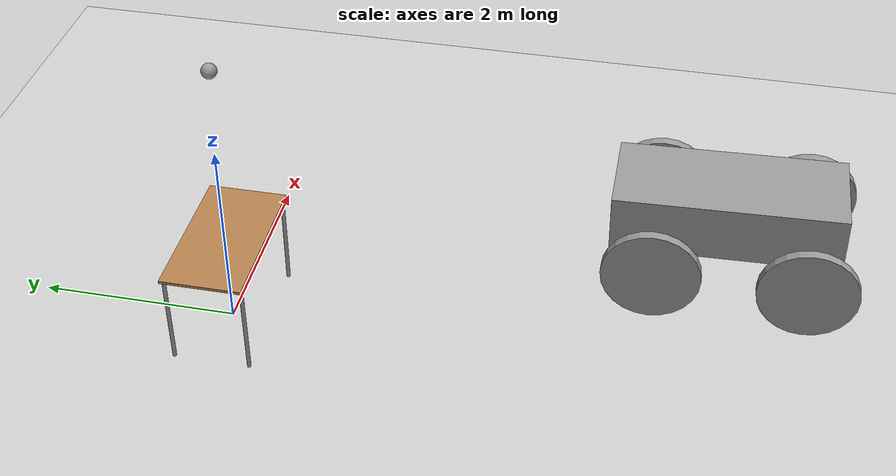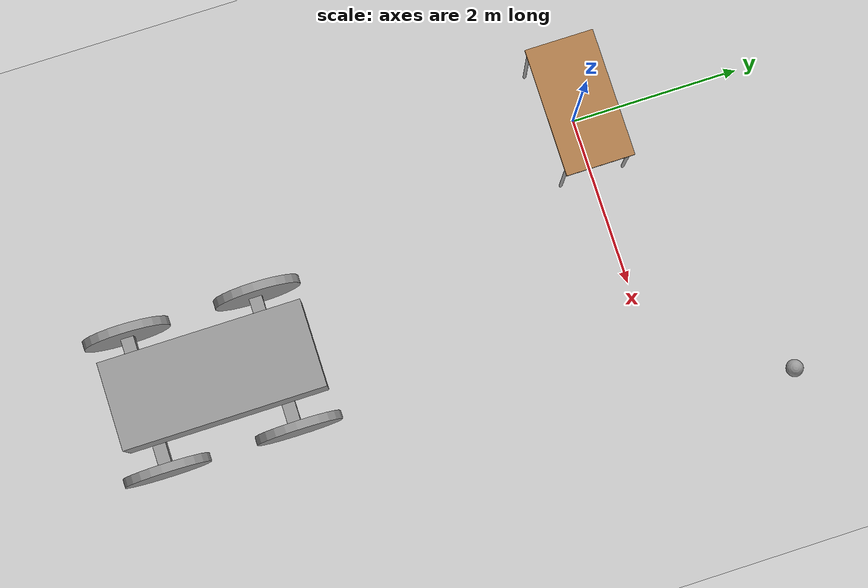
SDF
<sdf version="1.6">
 <world name="default">
  <model name="ground_plane">
   <static>1</static>
   <link name="link">
    <collision name="collision">
     <geometry><plane><normal>0 0 1</normal><size>100 100</size></plane></geometry>
     <surface>
      <contact><collide_bitmask>65535</collide_bitmask></contact>
      <friction><ode><mu>100</mu><mu2>50</mu2></ode></friction>
     </surface>
    </collision>
    <visual name="visual">
     <cast_shadows>0</cast_shadows>
     <geometry><plane><normal>0 0 1</normal><size>100 100</size></plane></geometry>
     <material>
      <script><uri>file://media/materials/scripts/gazebo.material</uri><name>Gazebo/Grey</name></script>
     </material>
    </visual>
   </link>
  </model>
  <model name="ground_plane">
   <static>1</static>
   <link name="link">
    <collision name="collision">
     <geometry><plane><normal>0 0 1</normal><size>100 100</size></plane></geometry>
     <surface>
      <contact><collide_bitmask>65535</collide_bitmask></contact>
      <friction><ode><mu>100</mu><mu2>50</mu2></ode></friction>
     </surface>
    </collision>
    <visual name="visual">
     <cast_shadows>0</cast_shadows>
     <geometry><plane><normal>0 0 1</normal><size>100 100</size></plane></geometry>
     <material>
      <script><uri>file://media/materials/scripts/gazebo.material</uri><name>Gazebo/Grey</name></script>
     </material>
    </visual>
   </link>
  </model>
  <model name="table">
   <static>1</static>
   <link name="link">
    <collision name="surface">
     <pose>0 0 1 0 -0 0</pose>
     <geometry><box><size>1.5 0.8 0.03</size></box></geometry>
     <surface><friction><ode><mu>0.6</mu><mu2>0.6</mu2></ode></friction></surface>
    </collision>
    <visual name="visual1">
     <pose>0 0 1 0 -0 0</pose>
     <geometry><box><size>1.5 0.8 0.03</size></box></geometry>
     <material>
      <script><uri>file://media/materials/scripts/gazebo.material</uri><name>Gazebo/Wood</name></script>
     </material>
    </visual>
    <collision name="front_left_leg">
     <pose>0.68 0.38 0.5 0 -0 0</pose>
     <geometry><cylinder><radius>0.02</radius><length>1</length></cylinder></geometry>
    </collision>
    <visual name="front_left_leg">
     <pose>0.68 0.38 0.5 0 -0 0</pose>
     <geometry><cylinder><radius>0.02</radius><length>1</length></cylinder></geometry>
     <material>
      <script><uri>file://media/materials/scripts/gazebo.material</uri><name>Gazebo/Grey</name></script>
     </material>
    </visual>
    <collision name="front_right_leg">
     <pose>0.68 -0.38 0.5 0 -0 0</pose>
     <geometry><cylinder><radius>0.02</radius><length>1</length></cylinder></geometry>
    </collision>
    <visual name="front_right_leg">
     <pose>0.68 -0.38 0.5 0 -0 0</pose>
     <geometry><cylinder><radius>0.02</radius><length>1</length></cylinder></geometry>
     <material>
      <script><uri>file://media/materials/scripts/gazebo.material</uri><name>Gazebo/Grey</name></script>
     </material>
    </visual>
    <collision name="back_right_leg">
     <pose>-0.68 -0.38 0.5 0 -0 0</pose>
     <geometry><cylinder><radius>0.02</radius><length>1</length></cylinder></geometry>
    </collision>
    <visual name="back_right_leg">
     <pose>-0.68 -0.38 0.5 0 -0 0</pose>
     <geometry><cylinder><radius>0.02</radius><length>1</length></cylinder></geometry>
     <material>
      <script><uri>file://media/materials/scripts/gazebo.material</uri><name>Gazebo/Grey</name></script>
     </material>
    </visual>
    <collision name="back_left_leg">
     <pose>-0.68 0.38 0.5 0 -0 0</pose>
     <geometry><cylinder><radius>0.02</radius><length>1</length></cylinder></geometry>
    </collision>
    <visual name="back_left_leg">
     <pose>-0.68 0.38 0.5 0 -0 0</pose>
     <geometry><cylinder><radius>0.02</radius><length>1</length></cylinder></geometry>
     <material>
      <script><uri>file://media/materials/scripts/gazebo.material</uri><name>Gazebo/Grey</name></script>
     </material>
    </visual>
   </link>
  </model>
  <model name="model_clone">
   <link name="link_0_clone">
    <inertial>
     <mass>1</mass>
     <inertia><ixx>0.145833</ixx><ixy>0</ixy><ixz>0</ixz><iyy>0.145833</iyy><iyz>0</iyz><izz>0.125</izz></inertia>
    </inertial>
    <pose>0.800049 0.773824 -0.030357 0 -0 0</pose>
    <visual name="visual">
     <pose>0 0 0 0 1.5707 0</pose>
     <geometry><cylinder><radius>0.5</radius><length>0.1</length></cylinder></geometry>
     <material>
      <lighting>1</lighting>
      <script><uri>file://media/materials/scripts/gazebo.material</uri><name>Gazebo/Grey</name></script>
      <shader type="vertex"><normal_map>__default__</normal_map></shader>
      <ambient>0.3 0.3 0.3 1</ambient>
      <diffuse>0.7 0.7 0.7 1</diffuse>
      <specular>0.01 0.01 0.01 1</specular>
      <emissive>0 0 0 1</emissive>
     </material>
    </visual>
    <collision name="collision">
     <pose>0 0 0 0 1.5707 0</pose>
     <geometry><cylinder><radius>0.5</radius><length>0.1</length></cylinder></geometry>
     <surface>
      <friction>
       <ode><mu>1</mu><mu2>1</mu2><fdir1>0 0 0</fdir1><slip1>0</slip1><slip2>0</slip2></ode>
       <torsional>
        <coefficient>1</coefficient>
        <patch_radius>0</patch_radius>
        <surface_radius>0</surface_radius>
        <use_patch_radius>1</use_patch_radius>
        <ode><slip>0</slip></ode>
       </torsional>
      </friction>
      <bounce><restitution_coefficient>0</restitution_coefficient><threshold>1e+06</threshold></bounce>
      <contact>
       <collide_without_contact>0</collide_without_contact>
       <collide_without_contact_bitmask>1</collide_without_contact_bitmask>
       <collide_bitmask>1</collide_bitmask>
       <ode>
        <soft_cfm>0</soft_cfm>
        <soft_erp>0.2</soft_erp>
        <kp>1e+13</kp>
        <kd>1</kd>
        <max_vel>0.01</max_vel>
        <min_depth>0</min_depth>
       </ode>
       <bullet>
        <split_impulse>1</split_impulse>
        <split_impulse_penetration_threshold>-0.01</split_impulse_penetration_threshold>
        <soft_cfm>0</soft_cfm>
        <soft_erp>0.2</soft_erp>
        <kp>1e+13</kp>
        <kd>1</kd>
       </bullet>
      </contact>
     </surface>
    </collision>
   </link>
   <link name="link_0_clone_clone">
    <inertial>
     <mass>1</mass>
     <inertia><ixx>0.145833</ixx><ixy>0</ixy><ixz>0</ixz><iyy>0.145833</iyy><iyz>0</iyz><izz>0.125</izz></inertia>
    </inertial>
    <pose>-0.800048 0.773824 -0.030357 0 -0 0</pose>
    <visual name="visual">
     <pose>0 0 0 0 1.5707 0</pose>
     <geometry><cylinder><radius>0.5</radius><length>0.1</length></cylinder></geometry>
     <material>
      <lighting>1</lighting>
      <script><uri>file://media/materials/scripts/gazebo.material</uri><name>Gazebo/Grey</name></script>
      <shader type="vertex"><normal_map>__default__</normal_map></shader>
      <ambient>0.3 0.3 0.3 1</ambient>
      <diffuse>0.7 0.7 0.7 1</diffuse>
      <specular>0.01 0.01 0.01 1</specular>
      <emissive>0 0 0 1</emissive>
     </material>
    </visual>
    <collision name="collision">
     <pose>0 0 0 0 1.5707 0</pose>
     <geometry><cylinder><radius>0.5</radius><length>0.1</length></cylinder></geometry>
     <surface>
      <friction>
       <ode><mu>1</mu><mu2>1</mu2><fdir1>0 0 0</fdir1><slip1>0</slip1><slip2>0</slip2></ode>
       <torsional>
        <coefficient>1</coefficient>
        <patch_radius>0</patch_radius>
        <surface_radius>0</surface_radius>
        <use_patch_radius>1</use_patch_radius>
        <ode><slip>0</slip></ode>
       </torsional>
      </friction>
      <bounce><restitution_coefficient>0</restitution_coefficient><threshold>1e+06</threshold></bounce>
      <contact>
       <collide_without_contact>0</collide_without_contact>
       <collide_without_contact_bitmask>1</collide_without_contact_bitmask>
       <collide_bitmask>1</collide_bitmask>
       <ode>
        <soft_cfm>0</soft_cfm>
        <soft_erp>0.2</soft_erp>
        <kp>1e+13</kp>
        <kd>1</kd>
        <max_vel>0.01</max_vel>
        <min_depth>0</min_depth>
       </ode>
       <bullet>
        <split_impulse>1</split_impulse>
        <split_impulse_penetration_threshold>-0.01</split_impulse_penetration_threshold>
        <soft_cfm>0</soft_cfm>
        <soft_erp>0.2</soft_erp>
        <kp>1e+13</kp>
        <kd>1</kd>
       </bullet>
      </contact>
     </surface>
    </collision>
   </link>
   <link name="link_0_clone_clone_clone">
    <inertial>
     <mass>1</mass>
     <inertia><ixx>0.145833</ixx><ixy>0</ixy><ixz>0</ixz><iyy>0.145833</iyy><iyz>0</iyz><izz>0.125</izz></inertia>
    </inertial>
    <pose>-0.800048 -0.758676 -0.062857 0 -0 0</pose>
    <visual name="visual">
     <pose>0 0 0 0 1.5707 0</pose>
     <geometry><cylinder><radius>0.5</radius><length>0.1</length></cylinder></geometry>
     <material>
      <lighting>1</lighting>
      <script><uri>file://media/materials/scripts/gazebo.material</uri><name>Gazebo/Grey</name></script>
      <shader type="vertex"><normal_map>__default__</normal_map></shader>
      <ambient>0.3 0.3 0.3 1</ambient>
      <diffuse>0.7 0.7 0.7 1</diffuse>
      <specular>0.01 0.01 0.01 1</specular>
      <emissive>0 0 0 1</emissive>
     </material>
    </visual>
    <collision name="collision">
     <pose>0 0 0 0 1.5707 0</pose>
     <geometry><cylinder><radius>0.5</radius><length>0.1</length></cylinder></geometry>
     <surface>
      <friction>
       <ode><mu>1</mu><mu2>1</mu2><fdir1>0 0 0</fdir1><slip1>0</slip1><slip2>0</slip2></ode>
       <torsional>
        <coefficient>1</coefficient>
        <patch_radius>0</patch_radius>
        <surface_radius>0</surface_radius>
        <use_patch_radius>1</use_patch_radius>
        <ode><slip>0</slip></ode>
       </torsional>
      </friction>
      <bounce><restitution_coefficient>0</restitution_coefficient><threshold>1e+06</threshold></bounce>
      <contact>
       <collide_without_contact>0</collide_without_contact>
       <collide_without_contact_bitmask>1</collide_without_contact_bitmask>
       <collide_bitmask>1</collide_bitmask>
       <ode>
        <soft_cfm>0</soft_cfm>
        <soft_erp>0.2</soft_erp>
        <kp>1e+13</kp>
        <kd>1</kd>
        <max_vel>0.01</max_vel>
        <min_depth>0</min_depth>
       </ode>
       <bullet>
        <split_impulse>1</split_impulse>
        <split_impulse_penetration_threshold>-0.01</split_impulse_penetration_threshold>
        <soft_cfm>0</soft_cfm>
        <soft_erp>0.2</soft_erp>
        <kp>1e+13</kp>
        <kd>1</kd>
       </bullet>
      </contact>
     </surface>
    </collision>
   </link>
   <link name="link_0_clone_clone_clone_0">
    <inertial>
     <mass>1</mass>
     <inertia><ixx>0.145833</ixx><ixy>0</ixy><ixz>0</ixz><iyy>0.145833</iyy><iyz>0</iyz><izz>0.125</izz></inertia>
    </inertial>
    <pose>0.800049 -0.758676 -0.062857 0 -0 0</pose>
    <visual name="visual">
     <pose>0 0 0 0 1.5707 0</pose>
     <geometry><cylinder><radius>0.5</radius><length>0.1</length></cylinder></geometry>
     <material>
      <lighting>1</lighting>
      <script><uri>file://media/materials/scripts/gazebo.material</uri><name>Gazebo/Grey</name></script>
      <shader type="vertex"><normal_map>__default__</normal_map></shader>
      <ambient>0.3 0.3 0.3 1</ambient>
      <diffuse>0.7 0.7 0.7 1</diffuse>
      <specular>0.01 0.01 0.01 1</specular>
      <emissive>0 0 0 1</emissive>
     </material>
    </visual>
    <collision name="collision">
     <pose>0 0 0 0 1.5707 0</pose>
     <geometry><cylinder><radius>0.5</radius><length>0.1</length></cylinder></geometry>
     <surface>
      <friction>
       <ode><mu>1</mu><mu2>1</mu2><fdir1>0 0 0</fdir1><slip1>0</slip1><slip2>0</slip2></ode>
       <torsional>
        <coefficient>1</coefficient>
        <patch_radius>0</patch_radius>
        <surface_radius>0</surface_radius>
        <use_patch_radius>1</use_patch_radius>
        <ode><slip>0</slip></ode>
       </torsional>
      </friction>
      <bounce><restitution_coefficient>0</restitution_coefficient><threshold>1e+06</threshold></bounce>
      <contact>
       <collide_without_contact>0</collide_without_contact>
       <collide_without_contact_bitmask>1</collide_without_contact_bitmask>
       <collide_bitmask>1</collide_bitmask>
       <ode>
        <soft_cfm>0</soft_cfm>
        <soft_erp>0.2</soft_erp>
        <kp>1e+13</kp>
        <kd>1</kd>
        <max_vel>0.01</max_vel>
        <min_depth>0</min_depth>
       </ode>
       <bullet>
        <split_impulse>1</split_impulse>
        <split_impulse_penetration_threshold>-0.01</split_impulse_penetration_threshold>
        <soft_cfm>0</soft_cfm>
        <soft_erp>0.2</soft_erp>
        <kp>1e+13</kp>
        <kd>1</kd>
       </bullet>
      </contact>
     </surface>
    </collision>
   </link>
   <link name="link_1">
    <inertial>
     <mass>1</mass>
     <inertia>
      <ixx>0.166667</ixx>
      <ixy>0</ixy>
      <ixz>0</ixz>
      <iyy>0.166667</iyy>
      <iyz>0</iyz>
      <izz>0.166667</izz>
     </inertia>
    </inertial>
    <pose>0 0.741324 -0.062857 0 -0 0</pose>
    <visual name="visual">
     <geometry><box><size>1.5 0.15 0.15</size></box></geometry>
     <material>
      <lighting>1</lighting>
      <script><uri>file://media/materials/scripts/gazebo.material</uri><name>Gazebo/Grey</name></script>
      <shader type="vertex"><normal_map>__default__</normal_map></shader>
      <ambient>0.3 0.3 0.3 1</ambient>
      <diffuse>0.7 0.7 0.7 1</diffuse>
      <specular>0.01 0.01 0.01 1</specular>
      <emissive>0 0 0 1</emissive>
     </material>
    </visual>
    <collision name="collision">
     <geometry><box><size>1.5 0.15 0.15</size></box></geometry>
     <surface>
      <friction>
       <ode><mu>1</mu><mu2>1</mu2><fdir1>0 0 0</fdir1><slip1>0</slip1><slip2>0</slip2></ode>
       <torsional>
        <coefficient>1</coefficient>
        <patch_radius>0</patch_radius>
        <surface_radius>0</surface_radius>
        <use_patch_radius>1</use_patch_radius>
        <ode><slip>0</slip></ode>
       </torsional>
      </friction>
      <bounce><restitution_coefficient>0</restitution_coefficient><threshold>1e+06</threshold></bounce>
      <contact>
       <collide_without_contact>0</collide_without_contact>
       <collide_without_contact_bitmask>1</collide_without_contact_bitmask>
       <collide_bitmask>1</collide_bitmask>
       <ode>
        <soft_cfm>0</soft_cfm>
        <soft_erp>0.2</soft_erp>
        <kp>1e+13</kp>
        <kd>1</kd>
        <max_vel>0.01</max_vel>
        <min_depth>0</min_depth>
       </ode>
       <bullet>
        <split_impulse>1</split_impulse>
        <split_impulse_penetration_threshold>-0.01</split_impulse_penetration_threshold>
        <soft_cfm>0</soft_cfm>
        <soft_erp>0.2</soft_erp>
        <kp>1e+13</kp>
        <kd>1</kd>
       </bullet>
      </contact>
     </surface>
    </collision>
   </link>
   <link name="link_1_clone">
    <inertial>
     <mass>1</mass>
     <inertia>
      <ixx>0.166667</ixx>
      <ixy>0</ixy>
      <ixz>0</ixz>
      <iyy>0.166667</iyy>
      <iyz>0</iyz>
      <izz>0.166667</izz>
     </inertia>
    </inertial>
    <pose>0 -0.758676 -0.062857 0 -0 0</pose>
    <visual name="visual">
     <geometry><box><size>1.5 0.15 0.15</size></box></geometry>
     <material>
      <lighting>1</lighting>
      <script><uri>file://media/materials/scripts/gazebo.material</uri><name>Gazebo/Grey</name></script>
      <shader type="vertex"><normal_map>__default__</normal_map></shader>
      <ambient>0.3 0.3 0.3 1</ambient>
      <diffuse>0.7 0.7 0.7 1</diffuse>
      <specular>0.01 0.01 0.01 1</specular>
      <emissive>0 0 0 1</emissive>
     </material>
    </visual>
    <collision name="collision">
     <geometry><box><size>1.5 0.15 0.15</size></box></geometry>
     <surface>
      <friction>
       <ode><mu>1</mu><mu2>1</mu2><fdir1>0 0 0</fdir1><slip1>0</slip1><slip2>0</slip2></ode>
       <torsional>
        <coefficient>1</coefficient>
        <patch_radius>0</patch_radius>
        <surface_radius>0</surface_radius>
        <use_patch_radius>1</use_patch_radius>
        <ode><slip>0</slip></ode>
       </torsional>
      </friction>
      <bounce><restitution_coefficient>0</restitution_coefficient><threshold>1e+06</threshold></bounce>
      <contact>
       <collide_without_contact>0</collide_without_contact>
       <collide_without_contact_bitmask>1</collide_without_contact_bitmask>
       <collide_bitmask>1</collide_bitmask>
       <ode>
        <soft_cfm>0</soft_cfm>
        <soft_erp>0.2</soft_erp>
        <kp>1e+13</kp>
        <kd>1</kd>
        <max_vel>0.01</max_vel>
        <min_depth>0</min_depth>
       </ode>
       <bullet>
        <split_impulse>1</split_impulse>
        <split_impulse_penetration_threshold>-0.01</split_impulse_penetration_threshold>
        <soft_cfm>0</soft_cfm>
        <soft_erp>0.2</soft_erp>
        <kp>1e+13</kp>
        <kd>1</kd>
       </bullet>
      </contact>
     </surface>
    </collision>
   </link>
   <link name="link_4">
    <inertial>
     <mass>2.30548</mass>
     <inertia><ixx>1.2133</ixx><ixy>0</ixy><ixz>0</ixz><iyy>0.384247</iyy><iyz>0</iyz><izz>1.2133</izz></inertia>
    </inertial>
    <pose>0 0.069782 0.312143 0 -0 0</pose>
    <visual name="visual">
     <geometry><box><size>1 2.30548 0.6</size></box></geometry>
     <material>
      <lighting>1</lighting>
      <script><uri>file://media/materials/scripts/gazebo.material</uri><name>Gazebo/Grey</name></script>
      <emissive>0 0 0 1</emissive>
      <shader type="vertex"><normal_map>__default__</normal_map></shader>
      <ambient>0.3 0.3 0.3 1</ambient>
      <diffuse>0.7 0.7 0.7 1</diffuse>
      <specular>0.01 0.01 0.01 1</specular>
     </material>
    </visual>
    <collision name="collision">
     <geometry><box><size>1 2.30548 0.6</size></box></geometry>
     <surface>
      <friction>
       <ode><mu>1</mu><mu2>1</mu2><fdir1>0 0 0</fdir1><slip1>0</slip1><slip2>0</slip2></ode>
       <torsional>
        <coefficient>1</coefficient>
        <patch_radius>0</patch_radius>
        <surface_radius>0</surface_radius>
        <use_patch_radius>1</use_patch_radius>
        <ode><slip>0</slip></ode>
       </torsional>
      </friction>
      <bounce><restitution_coefficient>0</restitution_coefficient><threshold>1e+06</threshold></bounce>
      <contact>
       <collide_without_contact>0</collide_without_contact>
       <collide_without_contact_bitmask>1</collide_without_contact_bitmask>
       <collide_bitmask>1</collide_bitmask>
       <ode>
        <soft_cfm>0</soft_cfm>
        <soft_erp>0.2</soft_erp>
        <kp>1e+13</kp>
        <kd>1</kd>
        <max_vel>0.01</max_vel>
        <min_depth>0</min_depth>
       </ode>
       <bullet>
        <split_impulse>1</split_impulse>
        <split_impulse_penetration_threshold>-0.01</split_impulse_penetration_threshold>
        <soft_cfm>0</soft_cfm>
        <soft_erp>0.2</soft_erp>
        <kp>1e+13</kp>
        <kd>1</kd>
       </bullet>
      </contact>
     </surface>
    </collision>
   </link>
   <joint name="link_1_JOINT_2" type="revolute">
    <parent>link_1</parent>
    <child>link_0_clone</child>
    <axis>
     <xyz>1 0 0</xyz>
     <use_parent_model_frame>0</use_parent_model_frame>
     <limit>
      <lower>-1.79769e+308</lower>
      <upper>1.79769e+308</upper>
      <effort>-1</effort>
      <velocity>-1</velocity>
     </limit>
     <dynamics>
      <spring_reference>0</spring_reference>
      <spring_stiffness>0</spring_stiffness>
      <damping>0</damping>
     </dynamics>
    </axis>
    <physics>
     <ode><limit><cfm>0</cfm><erp>0.2</erp></limit><suspension><cfm>0</cfm><erp>0.2</erp></suspension></ode>
    </physics>
   </joint>
   <joint name="link_1_JOINT_3" type="revolute">
    <parent>link_1</parent>
    <child>link_0_clone_clone</child>
    <axis>
     <xyz>1 0 0</xyz>
     <use_parent_model_frame>0</use_parent_model_frame>
     <limit>
      <lower>-1.79769e+308</lower>
      <upper>1.79769e+308</upper>
      <effort>-1</effort>
      <velocity>-1</velocity>
     </limit>
     <dynamics>
      <spring_reference>0</spring_reference>
      <spring_stiffness>0</spring_stiffness>
      <damping>0</damping>
     </dynamics>
    </axis>
    <physics>
     <ode><limit><cfm>0</cfm><erp>0.2</erp></limit><suspension><cfm>0</cfm><erp>0.2</erp></suspension></ode>
    </physics>
   </joint>
   <joint name="link_1_JOINT_4" type="revolute">
    <parent>link_1</parent>
    <child>link_1_clone</child>
    <axis>
     <xyz>1 0 0</xyz>
     <use_parent_model_frame>0</use_parent_model_frame>
     <limit>
      <lower>-1.79769e+308</lower>
      <upper>1.79769e+308</upper>
      <effort>-1</effort>
      <velocity>-1</velocity>
     </limit>
     <dynamics>
      <spring_reference>0</spring_reference>
      <spring_stiffness>0</spring_stiffness>
      <damping>0</damping>
     </dynamics>
    </axis>
    <physics>
     <ode><limit><cfm>0</cfm><erp>0.2</erp></limit><suspension><cfm>0</cfm><erp>0.2</erp></suspension></ode>
    </physics>
   </joint>
   <joint name="link_1_JOINT_7" type="revolute">
    <parent>link_1</parent>
    <child>link_4</child>
    <axis>
     <xyz>1 0 0</xyz>
     <use_parent_model_frame>0</use_parent_model_frame>
     <limit>
      <lower>-1.79769e+308</lower>
      <upper>1.79769e+308</upper>
      <effort>-1</effort>
      <velocity>-1</velocity>
     </limit>
     <dynamics>
      <spring_reference>0</spring_reference>
      <spring_stiffness>0</spring_stiffness>
      <damping>0</damping>
     </dynamics>
    </axis>
    <physics>
     <ode><limit><cfm>0</cfm><erp>0.2</erp></limit><suspension><cfm>0</cfm><erp>0.2</erp></suspension></ode>
    </physics>
   </joint>
   <joint name="link_1_JOINT_8" type="revolute">
    <parent>link_1</parent>
    <child>link_4</child>
    <axis>
     <xyz>1 0 0</xyz>
     <use_parent_model_frame>0</use_parent_model_frame>
     <limit>
      <lower>-1.79769e+308</lower>
      <upper>1.79769e+308</upper>
      <effort>-1</effort>
      <velocity>-1</velocity>
     </limit>
     <dynamics>
      <spring_reference>0</spring_reference>
      <spring_stiffness>0</spring_stiffness>
      <damping>0</damping>
     </dynamics>
    </axis>
    <physics>
     <ode><limit><cfm>0</cfm><erp>0.2</erp></limit><suspension><cfm>0</cfm><erp>0.2</erp></suspension></ode>
    </physics>
   </joint>
   <joint name="link_1_clone_JOINT_5" type="revolute">
    <parent>link_1_clone</parent>
    <child>link_0_clone_clone_clone</child>
    <axis>
     <xyz>1 0 0</xyz>
     <use_parent_model_frame>0</use_parent_model_frame>
     <limit>
      <lower>-1.79769e+308</lower>
      <upper>1.79769e+308</upper>
      <effort>-1</effort>
      <velocity>-1</velocity>
     </limit>
     <dynamics>
      <spring_reference>0</spring_reference>
      <spring_stiffness>0</spring_stiffness>
      <damping>0</damping>
     </dynamics>
    </axis>
    <physics>
     <ode><limit><cfm>0</cfm><erp>0.2</erp></limit><suspension><cfm>0</cfm><erp>0.2</erp></suspension></ode>
    </physics>
   </joint>
   <joint name="link_1_clone_JOINT_6" type="revolute">
    <parent>link_1_clone</parent>
    <child>link_0_clone_clone_clone_0</child>
    <axis>
     <xyz>1 0 0</xyz>
     <use_parent_model_frame>0</use_parent_model_frame>
     <limit>
      <lower>-1.79769e+308</lower>
      <upper>1.79769e+308</upper>
      <effort>-1</effort>
      <velocity>-1</velocity>
     </limit>
     <dynamics>
      <spring_reference>0</spring_reference>
      <spring_stiffness>0</spring_stiffness>
      <damping>0</damping>
     </dynamics>
    </axis>
    <physics>
     <ode><limit><cfm>0</cfm><erp>0.2</erp></limit><suspension><cfm>0</cfm><erp>0.2</erp></suspension></ode>
    </physics>
   </joint>
   <joint name="link_1_clone_JOINT_9" type="revolute">
    <parent>link_1_clone</parent>
    <child>link_4</child>
    <axis>
     <xyz>1 0 0</xyz>
     <use_parent_model_frame>0</use_parent_model_frame>
     <limit>
      <lower>-1.79769e+308</lower>
      <upper>1.79769e+308</upper>
      <effort>-1</effort>
      <velocity>-1</velocity>
     </limit>
     <dynamics>
      <spring_reference>0</spring_reference>
      <spring_stiffness>0</spring_stiffness>
      <damping>0</damping>
     </dynamics>
    </axis>
    <physics>
     <ode><limit><cfm>0</cfm><erp>0.2</erp></limit><suspension><cfm>0</cfm><erp>0.2</erp></suspension></ode>
    </physics>
   </joint>
   <static>0</static>
   <pose>1.67694 -4.85724 0.551244 -0.027 3e-06 0.003186</pose>
  </model>
  <model name="my_ball">
   <link name="link_0">
    <inertial>
     <mass>1</mass>
     <inertia><ixx>0.1</ixx><ixy>0</ixy><ixz>0</ixz><iyy>0.1</iyy><iyz>0</iyz><izz>0.1</izz></inertia>
    </inertial>
    <visual name="visual">
     <geometry><sphere><radius>0.1</radius></sphere></geometry>
     <material>
      <lighting>1</lighting>
      <script><uri>file://media/materials/scripts/gazebo.material</uri><name>Gazebo/Grey</name></script>
      <shader type="pixel"><normal_map>__default__</normal_map></shader>
      <ambient>1 1 1 1</ambient>
      <diffuse>1 1 1 1</diffuse>
      <specular>1 1 1 1</specular>
      <emissive>1 1 1 1</emissive>
     </material>
    </visual>
    <collision name="collision">
     <geometry><sphere><radius>0.1</radius></sphere></geometry>
     <surface>
      <friction>
       <ode><mu>1</mu><mu2>1</mu2><fdir1>0 0 0</fdir1><slip1>0</slip1><slip2>0</slip2></ode>
       <torsional>
        <coefficient>1</coefficient>
        <patch_radius>0</patch_radius>
        <surface_radius>0</surface_radius>
        <use_patch_radius>1</use_patch_radius>
        <ode><slip>0</slip></ode>
       </torsional>
      </friction>
      <bounce><restitution_coefficient>0</restitution_coefficient><threshold>1e+06</threshold></bounce>
      <contact>
       <collide_without_contact>0</collide_without_contact>
       <collide_without_contact_bitmask>1</collide_without_contact_bitmask>
       <collide_bitmask>1</collide_bitmask>
       <ode>
        <soft_cfm>0</soft_cfm>
        <soft_erp>0.2</soft_erp>
        <kp>1e+13</kp>
        <kd>1</kd>
        <max_vel>0.01</max_vel>
        <min_depth>0</min_depth>
       </ode>
       <bullet>
        <split_impulse>1</split_impulse>
        <split_impulse_penetration_threshold>-0.01</split_impulse_penetration_threshold>
        <soft_cfm>0</soft_cfm>
        <soft_erp>0.2</soft_erp>
        <kp>1e+13</kp>
        <kd>1</kd>
       </bullet>
      </contact>
     </surface>
    </collision>
   </link>
   <static>0</static>
   <pose>3.52944 1.4116 0.5 0 -0 0</pose>
  </model>
 </world>
</sdf>
